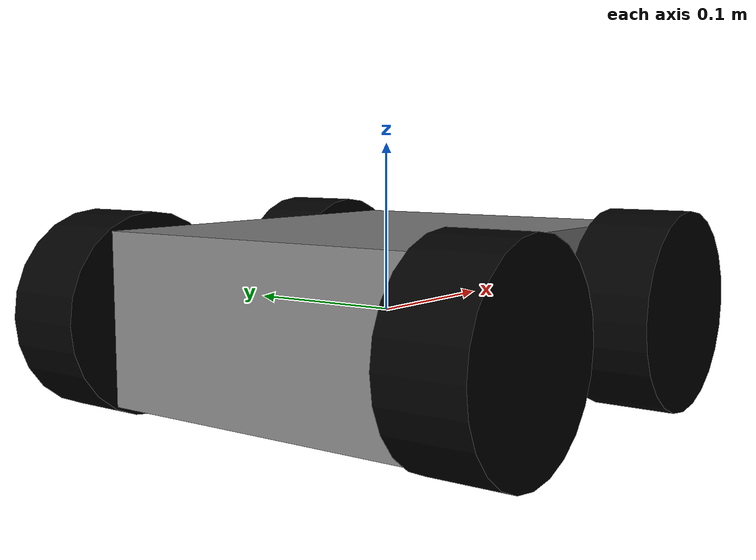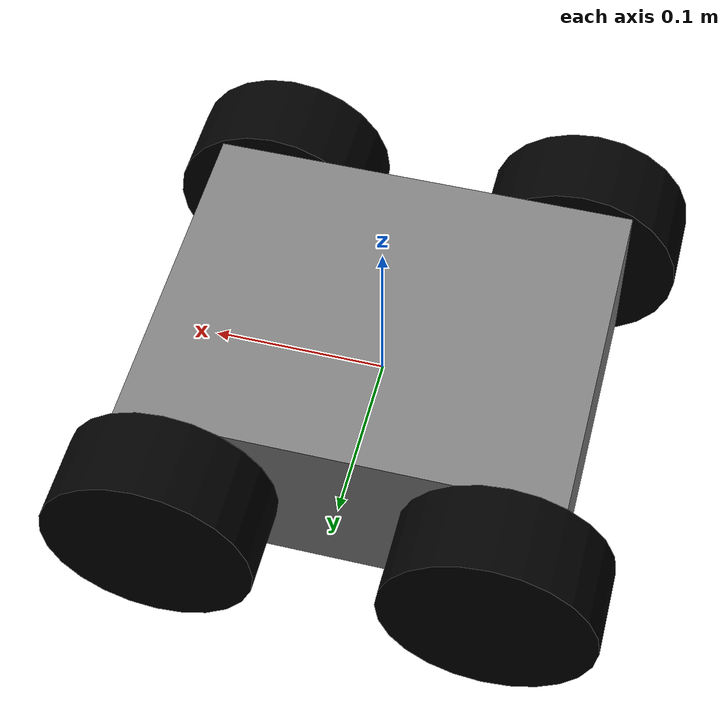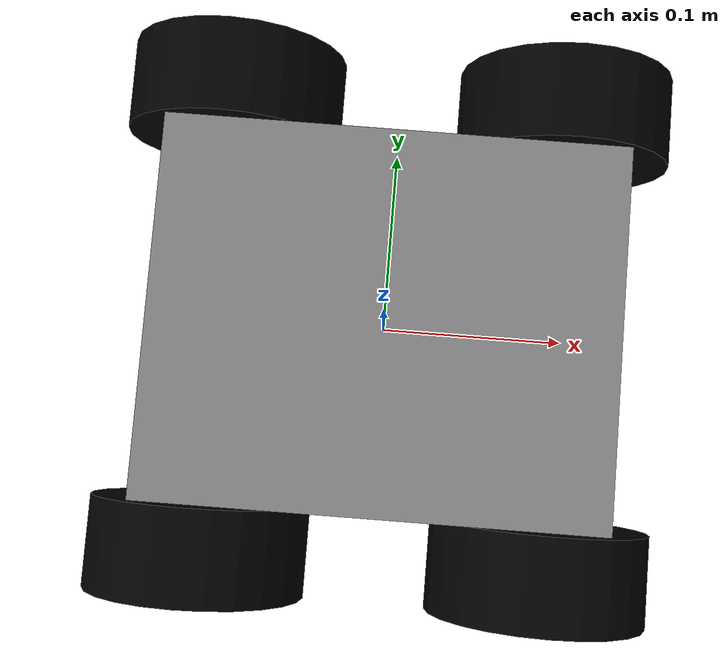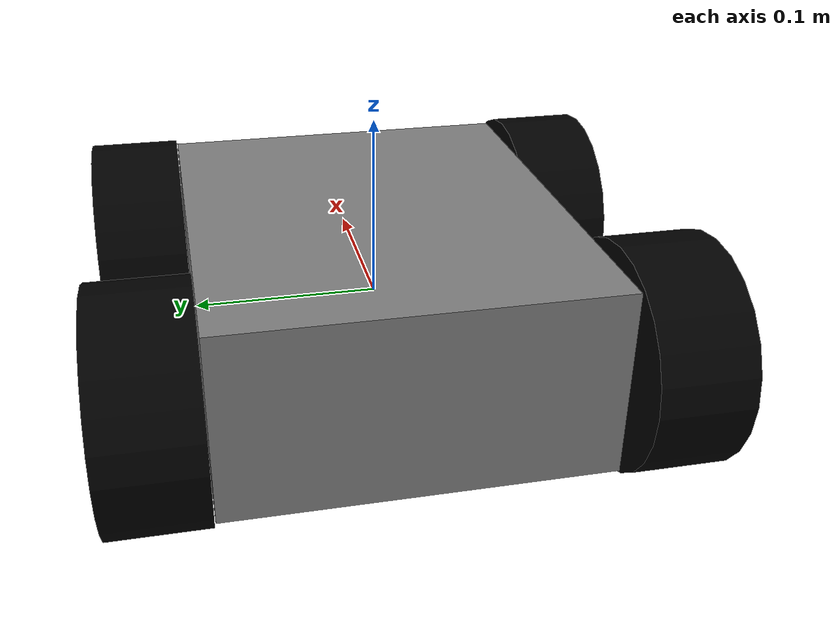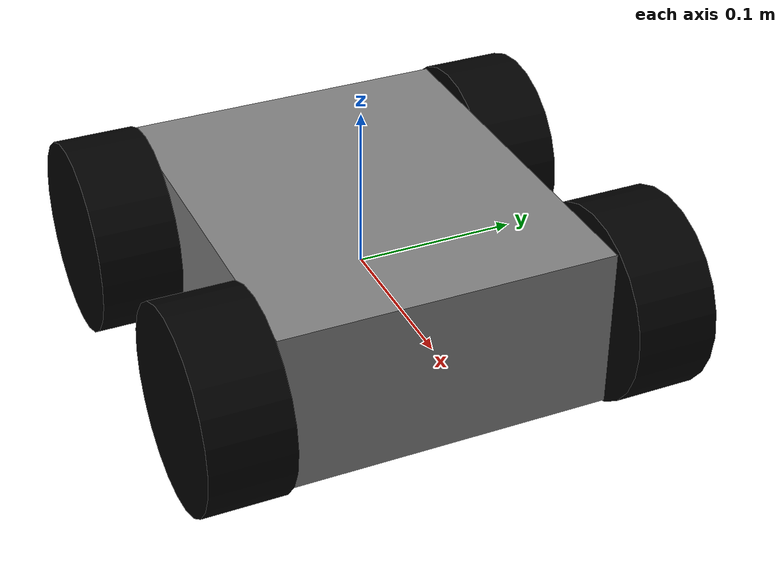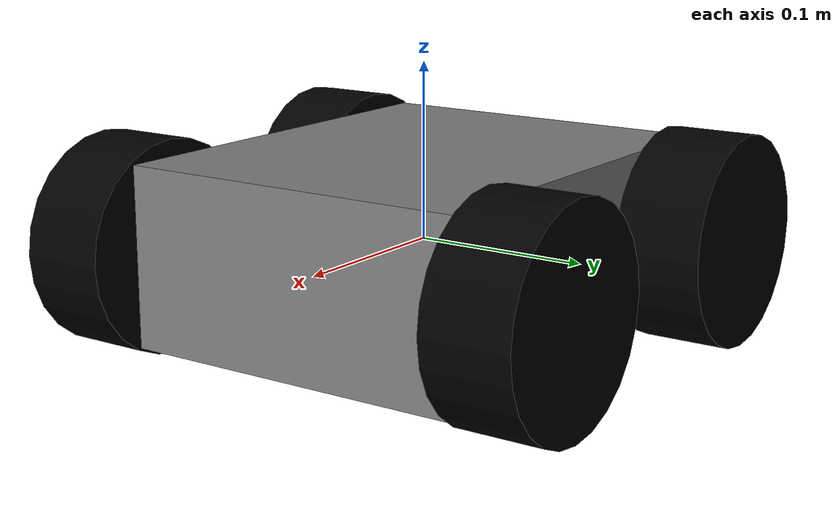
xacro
<?xml version="1.0"?>
<robot name="four-wheeled" xmlns:xacro="http://www.ros.org/wiki/xacro">
    <xacro:property name="scale" value="1.0" />
    <xacro:property name="caseWidth" value="${0.2032 * scale}" />
    <xacro:property name="caseLength" value="${0.24765 * scale}" />
    <xacro:property name="caseHeight" value="${0.1016 * scale}" />
    <xacro:property name="wheelDiam" value="${0.12065 * scale}" />
    <xacro:property name="wheelWidth" value="${0.05 * scale}"/>
    <xacro:property name="wheelCaseGap" value="${0.0008 * scale}"/>
    <xacro:property name="wheelToMiddleWidth" value="${(caseWidth + wheelWidth)/2 + wheelCaseGap}"/>
    <xacro:property name="wheelToMiddleLength" value="${caseLength/2 - 0.03 * scale}"/>

    <material name="gray">
        <color rgba="0.5 0.5 0.5 1"/>
    </material>
    <material name="black">
        <color rgba="0 0 0 1"/>
    </material>
    <material name="white">
        <color rgba="1 1 1 1"/>
    </material>
    <material name="green">
        <color rgba="0 1 0 1"/>
    </material>

    <xacro:macro name="default_inertial" params="mass">
        <inertial>
            <mass value="${mass}" />
            <inertia ixx="1.0" ixy="0.0" ixz="0.0" iyy="1.0" iyz="0.0" izz="1.0" />
        </inertial>
    </xacro:macro>

    <link name="base_link">
        <visual>
            <geometry>
                <box size="${caseLength} ${caseWidth} ${caseHeight}"/>
            </geometry>
            <material name="gray"/>
        </visual>
        <xacro:default_inertial mass="2"/>
        <collision>
            <geometry>
                <box size="${caseLength} ${caseWidth} ${caseHeight}"/>
            </geometry>
        </collision>
    </link>

    <xacro:macro name="wheel" params="prefix suffix origX origY origZ">
        <link name="${prefix}_${suffix}_wheel">
            <visual>
                <origin rpy="${pi/2} 0 0" xyz="0 0 0"/>
                <geometry>
                    <cylinder length="${wheelWidth}" radius="${wheelDiam/2}"/>
                </geometry>
                <material name="black"/>
            </visual>
            <collision>
                <origin rpy="${pi/2} 0 0" xyz="0 0 0"/>
                <geometry>
                    <cylinder length="${wheelWidth}" radius="${wheelDiam/2}"/>
                </geometry>
            </collision>
            <xacro:default_inertial mass="0.15"/>
        </link>
        <joint name="${prefix}_${suffix}_wheel_joint" type="continuous">
            <axis rpy="0 0 0" xyz="0 1 0"/>
            <parent link="base_link"/>
            <child link="${prefix}_${suffix}_wheel"/>
            <origin rpy="0 0 0" xyz="${origX} ${origY} ${origZ}"/>
        </joint>

        <transmission name="${prefix}_${suffix}_wheel_trans">
            <type>transmission_interface/SimpleTransmission</type>
            <actuator name="${prefix}_${suffix}_wheel_motor">
                <mechanicalReduction>1</mechanicalReduction>
            </actuator>
            <joint name="${prefix}_${suffix}_wheel_joint">
                <hardwareInterface>hardware_interface/VelocityJointInterface</hardwareInterface>
            </joint>
        </transmission>

        <gazebo reference="${prefix}_${suffix}_wheel">
            <mu1 value="200.0"/>
            <mu2 value="100.0"/>
            <kp value="10000000.0" />
            <kd value="1.0" />
            <material>Gazebo/Black</material>
        </gazebo>
    </xacro:macro>

    <xacro:wheel prefix="rear" suffix="left" origX="${-wheelToMiddleLength}" origY="${wheelToMiddleWidth}" origZ="0.0"/>
    <xacro:wheel prefix="rear" suffix="right" origX="${-wheelToMiddleLength}" origY="${-wheelToMiddleWidth}" origZ="0.0"/>
    <xacro:wheel prefix="front" suffix="left" origX="${wheelToMiddleLength}" origY="${wheelToMiddleWidth}" origZ="0.0"/>
    <xacro:wheel prefix="front" suffix="right" origX="${wheelToMiddleLength}" origY="${-wheelToMiddleWidth}" origZ="0.0"/>

    <gazebo>
        <plugin name="gazebo_ros_control" filename="libgazebo_ros_control.so">
            <robotNamespace>/</robotNamespace>
        </plugin>
    </gazebo>

</robot>
